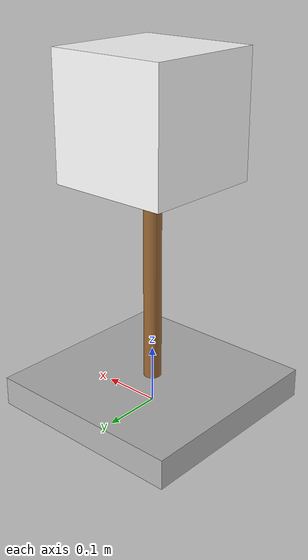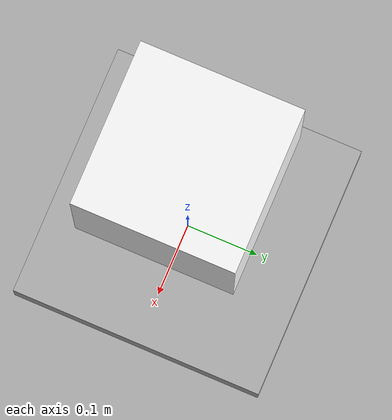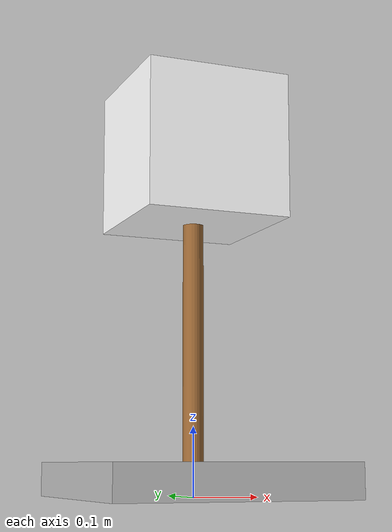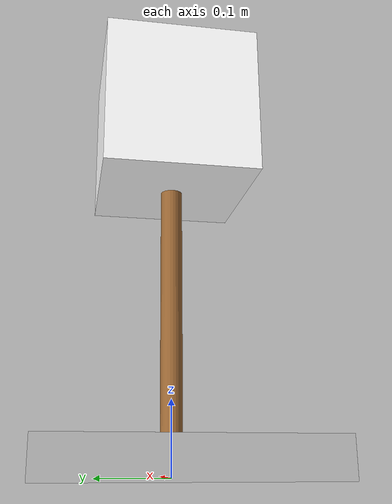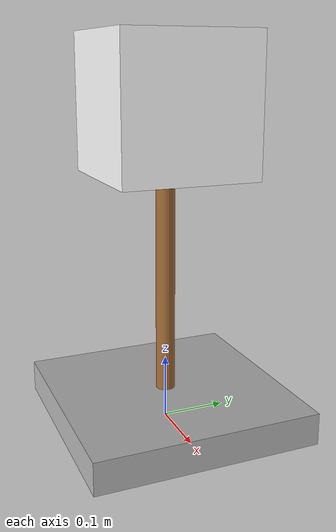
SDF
<sdf version="1.6">
  <model name="aruco_14">
    <static>true</static>
    <link name="link">
      <visual name="base_visual">
        <pose>0 0 0.025 0 0 0</pose>
        <geometry>
          <box>
            <size>0.35 0.35 0.05</size>
          </box>
        </geometry>
        <material>
          <ambient>0.7 0.7 0.7 1</ambient>
          <diffuse>0.7 0.7 0.7 1</diffuse>
        </material>
      </visual>
      <collision name="base_collision">
        <pose>0 0 0.025 0 0 0</pose>
        <geometry>
          <box>
            <size>0.35 0.35 0.05</size>
          </box>
        </geometry>
      </collision>
      <visual name="pole_visual">
        <pose>0 0 0.228500 0 0 0</pose>
        <geometry>
          <cylinder>
            <radius>0.015</radius>
            <length>0.357000</length>
          </cylinder>
        </geometry>
        <material>
          <ambient>0.6 0.4 0.2 1</ambient>
          <diffuse>0.6 0.4 0.2 1</diffuse>
        </material>
      </visual>
      <collision name="pole_collision">
        <pose>0 0 0.228500 0 0 0</pose>
        <geometry>
          <cylinder>
            <radius>0.015</radius>
            <length>0.357000</length>
          </cylinder>
        </geometry>
      </collision>
      <visual name="head_visual">
        <pose>0 0 0.496250 0 0 0</pose>
        <geometry>
          <box>
            <size>0.21 0.21 0.21</size>
          </box>
        </geometry>
        <material>
          <ambient>1 1 1 1</ambient>
          <diffuse>1 1 1 1</diffuse>
          <pbr>
            <metal>
              <albedo_map>model://aruco_14/materials/textures/marker_14.png</albedo_map>
            </metal>
          </pbr>
        </material>
      </visual>
      <collision name="head_collision">
        <pose>0 0 0.496250 0 0 0</pose>
        <geometry>
          <box>
            <size>0.21 0.21 0.21</size>
          </box>
        </geometry>
      </collision>
    </link>
  </model>
</sdf>
